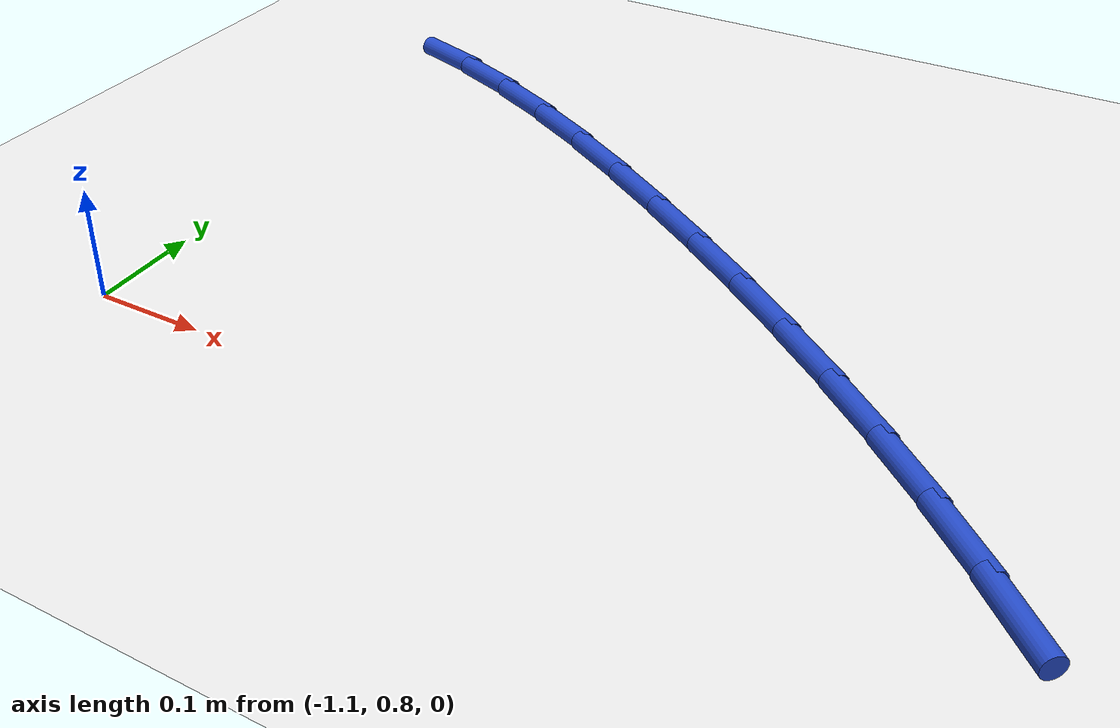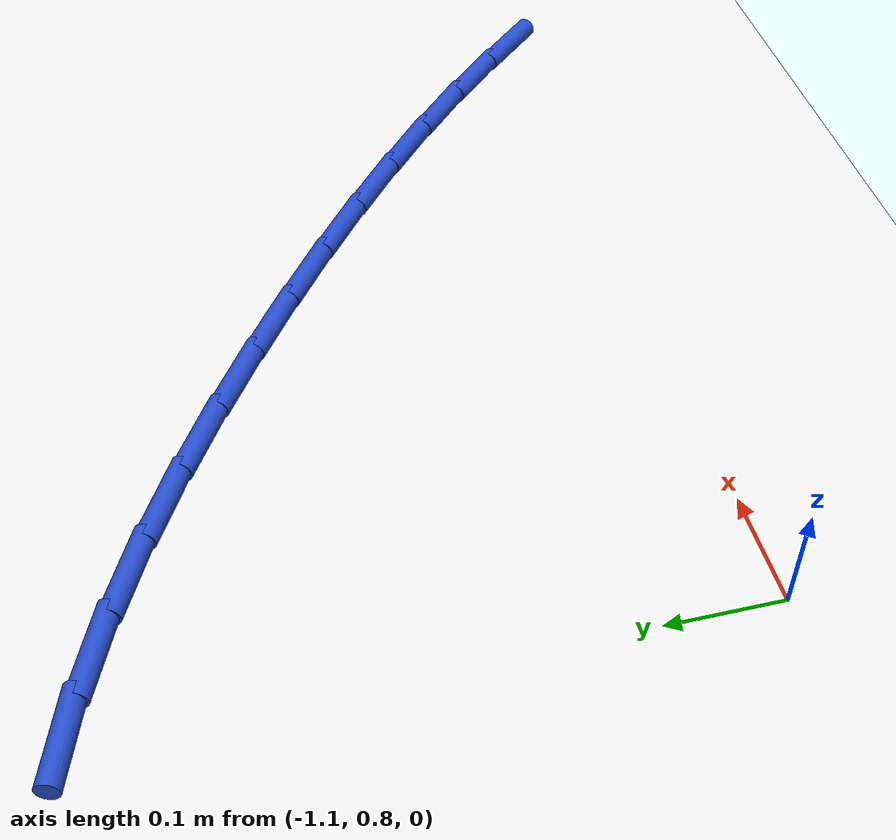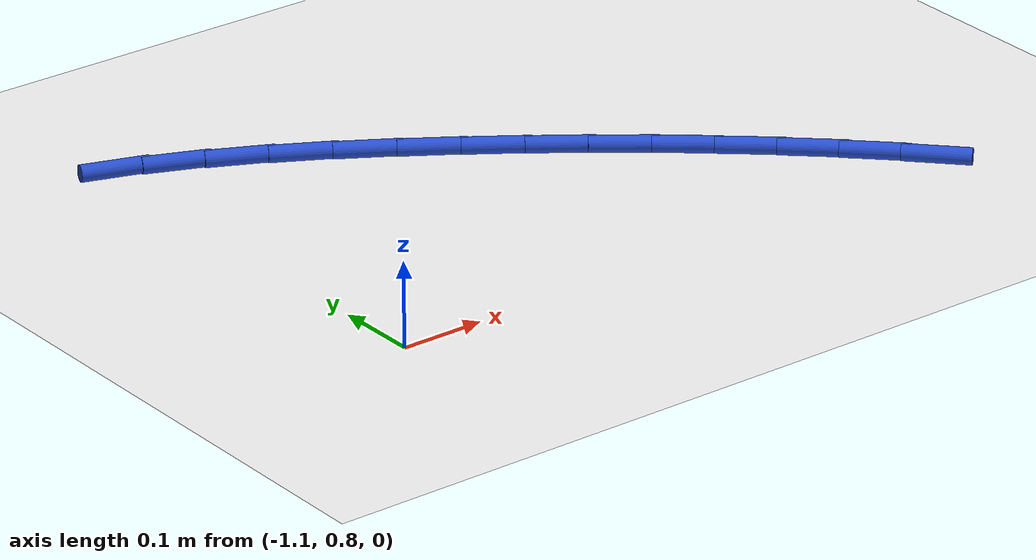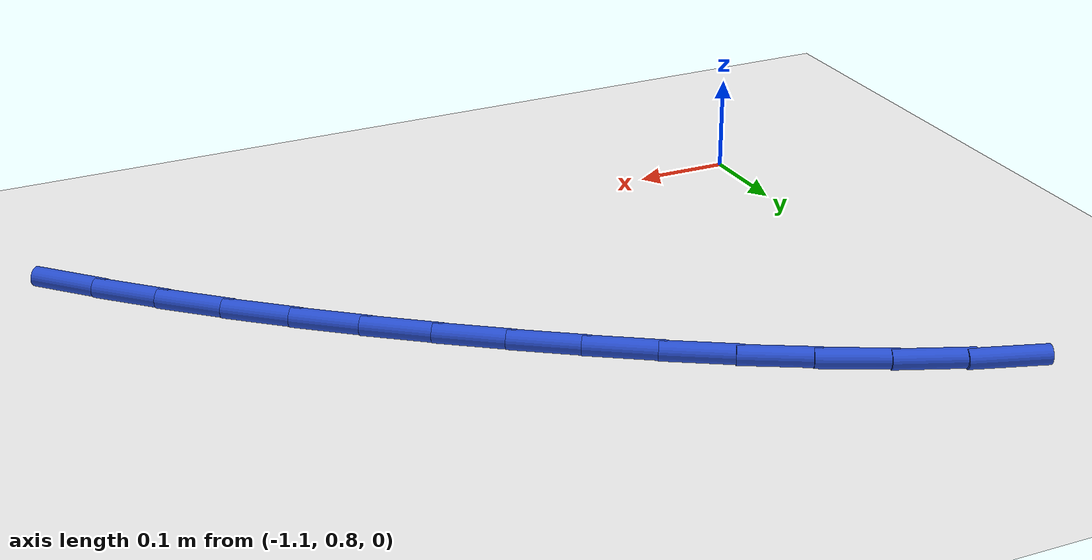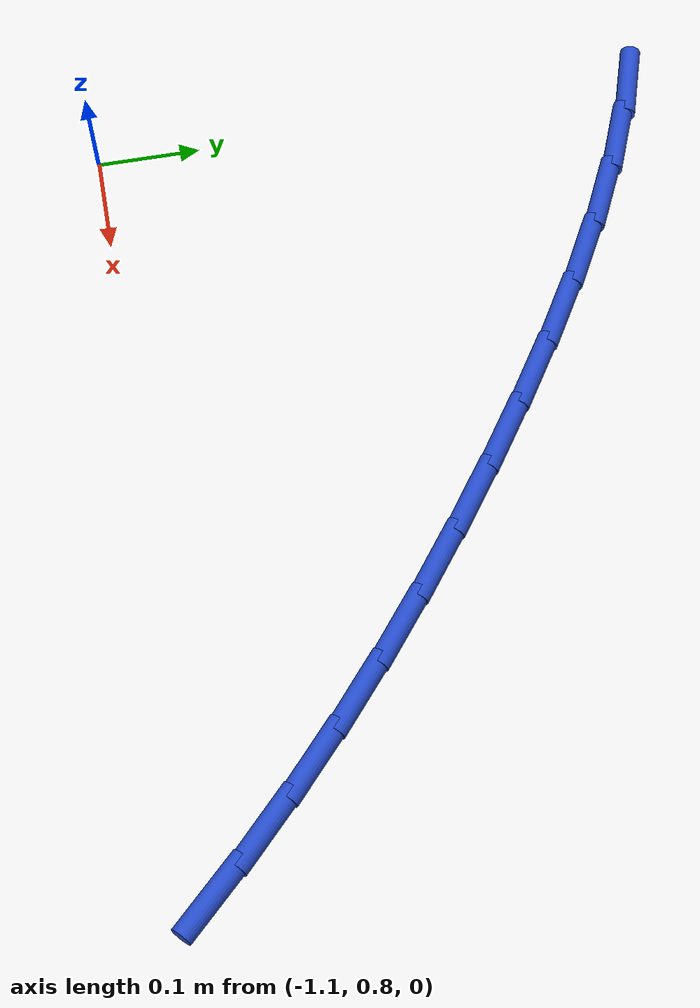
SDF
<sdf version="1.6">
 <world name="default">
  <model name="ground_plane">
   <static>1</static>
   <link name="link">
    <collision name="collision">
     <geometry><plane><normal>0 0 1</normal><size>100 100</size></plane></geometry>
     <surface><friction><ode><mu>100</mu><mu2>50</mu2></ode></friction></surface>
    </collision>
    <visual name="visual">
     <cast_shadows>0</cast_shadows>
     <geometry><plane><normal>0 0 1</normal><size>100 100</size></plane></geometry>
     <material>
      <script><uri>file://media/materials/scripts/gazebo.material</uri><name>Gazebo/WhiteGlow</name></script>
     </material>
    </visual>
   </link>
  </model>
  <model name="line">
   <link name="link_13">
    <pose>-0.355073120079091 0.8081199897987604 0.01 0 1.57 -0.8139857585570832</pose>
    <collision name="collision">
     <geometry><cylinder><radius>0.01</radius><length>0.08</length></cylinder></geometry>
    </collision>
    <visual name="visual">
     <material>
      <script><name>Gazebo/Blue</name><uri>file://media/materials/scripts/gazebo.material</uri></script>
     </material>
     <geometry><cylinder><radius>0.01</radius><length>0.08</length></cylinder></geometry>
    </visual>
   </link>
   <link name="link_14">
    <pose>-0.4024307642036317 0.8582657822755538 0.01 0 1.57 -0.7768421394053886</pose>
    <collision name="collision">
     <geometry><cylinder><radius>0.01</radius><length>0.08</length></cylinder></geometry>
    </collision>
    <visual name="visual">
     <material>
      <script><name>Gazebo/Blue</name><uri>file://media/materials/scripts/gazebo.material</uri></script>
     </material>
     <geometry><cylinder><radius>0.01</radius><length>0.08</length></cylinder></geometry>
    </visual>
   </link>
   <link name="link_15">
    <pose>-0.4518151535009554 0.9068122523437053 0.01 0 1.57 -0.7420849091556555</pose>
    <collision name="collision">
     <geometry><cylinder><radius>0.01</radius><length>0.08</length></cylinder></geometry>
    </collision>
    <visual name="visual">
     <material>
      <script><name>Gazebo/Blue</name><uri>file://media/materials/scripts/gazebo.material</uri></script>
     </material>
     <geometry><cylinder><radius>0.01</radius><length>0.08</length></cylinder></geometry>
    </visual>
   </link>
   <link name="link_16">
    <pose>-0.5031003856458387 0.9538367072266136 0.01 0 1.57 -0.7097073583541238</pose>
    <collision name="collision">
     <geometry><cylinder><radius>0.01</radius><length>0.08</length></cylinder></geometry>
    </collision>
    <visual name="visual">
     <material>
      <script><name>Gazebo/Blue</name><uri>file://media/materials/scripts/gazebo.material</uri></script>
     </material>
     <geometry><cylinder><radius>0.01</radius><length>0.08</length></cylinder></geometry>
    </visual>
   </link>
   <link name="link_17">
    <pose>-0.5561605583130587 0.9994164541476779 0.01 0 1.57 -0.6796807554760211</pose>
    <collision name="collision">
     <geometry><cylinder><radius>0.01</radius><length>0.08</length></cylinder></geometry>
    </collision>
    <visual name="visual">
     <material>
      <script><name>Gazebo/Blue</name><uri>file://media/materials/scripts/gazebo.material</uri></script>
     </material>
     <geometry><cylinder><radius>0.01</radius><length>0.08</length></cylinder></geometry>
    </visual>
   </link>
   <link name="link_18">
    <pose>-0.6108697691773919 1.0436288003302971 0.01 0 1.57 -0.6519600618852163</pose>
    <collision name="collision">
     <geometry><cylinder><radius>0.01</radius><length>0.08</length></cylinder></geometry>
    </collision>
    <visual name="visual">
     <material>
      <script><name>Gazebo/Blue</name><uri>file://media/materials/scripts/gazebo.material</uri></script>
     </material>
     <geometry><cylinder><radius>0.01</radius><length>0.08</length></cylinder></geometry>
    </visual>
   </link>
   <link name="link_19">
    <pose>-0.6671021159136152 1.0865510529978701 0.01 0 1.57 -0.6264890255681641</pose>
    <collision name="collision">
     <geometry><cylinder><radius>0.01</radius><length>0.08</length></cylinder></geometry>
    </collision>
    <visual name="visual">
     <material>
      <script><name>Gazebo/Blue</name><uri>file://media/materials/scripts/gazebo.material</uri></script>
     </material>
     <geometry><cylinder><radius>0.01</radius><length>0.08</length></cylinder></geometry>
    </visual>
   </link>
   <link name="link_20">
    <pose>-0.7247316961965058 1.128260519373796 0.01 0 1.57 -0.6031588622097378</pose>
    <collision name="collision">
     <geometry><cylinder><radius>0.01</radius><length>0.08</length></cylinder></geometry>
    </collision>
    <visual name="visual">
     <material>
      <script><name>Gazebo/Blue</name><uri>file://media/materials/scripts/gazebo.material</uri></script>
     </material>
     <geometry><cylinder><radius>0.01</radius><length>0.08</length></cylinder></geometry>
    </visual>
   </link>
   <link name="link_21">
    <pose>-0.7836331887286317 1.1688309375743438 0.01 0 1.57 -0.5782690021500951</pose>
    <collision name="collision">
     <geometry><cylinder><radius>0.01</radius><length>0.08</length></cylinder></geometry>
    </collision>
    <visual name="visual">
     <material>
      <script><name>Gazebo/Blue</name><uri>file://media/materials/scripts/gazebo.material</uri></script>
     </material>
     <geometry><cylinder><radius>0.01</radius><length>0.08</length></cylinder></geometry>
    </visual>
   </link>
   <link name="link_22">
    <pose>-0.8437271692109319 1.2080541120345567 0.01 0 1.57 -0.5453873844028739</pose>
    <collision name="collision">
     <geometry><cylinder><radius>0.01</radius><length>0.08</length></cylinder></geometry>
    </collision>
    <visual name="visual">
     <material>
      <script><name>Gazebo/Blue</name><uri>file://media/materials/scripts/gazebo.material</uri></script>
     </material>
     <geometry><cylinder><radius>0.01</radius><length>0.08</length></cylinder></geometry>
    </visual>
   </link>
   <link name="link_23">
    <pose>-0.9050125498886756 1.2452406455618852 0.01 0 1.57 -0.5034281956982776</pose>
    <collision name="collision">
     <geometry><cylinder><radius>0.01</radius><length>0.08</length></cylinder></geometry>
    </collision>
    <visual name="visual">
     <material>
      <script><name>Gazebo/Blue</name><uri>file://media/materials/scripts/gazebo.material</uri></script>
     </material>
     <geometry><cylinder><radius>0.01</radius><length>0.08</length></cylinder></geometry>
    </visual>
   </link>
   <link name="link_24">
    <pose>-0.9674958990747824 1.2796541116718192 0.01 0 1.57 -0.4517708321824172</pose>
    <collision name="collision">
     <geometry><cylinder><radius>0.01</radius><length>0.08</length></cylinder></geometry>
    </collision>
    <visual name="visual">
     <material>
      <script><name>Gazebo/Blue</name><uri>file://media/materials/scripts/gazebo.material</uri></script>
     </material>
     <geometry><cylinder><radius>0.01</radius><length>0.08</length></cylinder></geometry>
    </visual>
   </link>
   <link name="link_25">
    <pose>-1.0311837850821723 1.3105580838798494 0.01 0 1.57 -0.3897495617200435</pose>
    <collision name="collision">
     <geometry><cylinder><radius>0.01</radius><length>0.08</length></cylinder></geometry>
    </collision>
    <visual name="visual">
     <material>
      <script><name>Gazebo/Blue</name><uri>file://media/materials/scripts/gazebo.material</uri></script>
     </material>
     <geometry><cylinder><radius>0.01</radius><length>0.08</length></cylinder></geometry>
    </visual>
   </link>
   <link name="link_26">
    <pose>-1.0960827762237653 1.337216135701466 0.01 0 1.57 -0.3167986745148065</pose>
    <collision name="collision">
     <geometry><cylinder><radius>0.01</radius><length>0.08</length></cylinder></geometry>
    </collision>
    <visual name="visual">
     <material>
      <script><name>Gazebo/Blue</name><uri>file://media/materials/scripts/gazebo.material</uri></script>
     </material>
     <geometry><cylinder><radius>0.01</radius><length>0.08</length></cylinder></geometry>
    </visual>
   </link>
  </model>
 </world>
</sdf>
